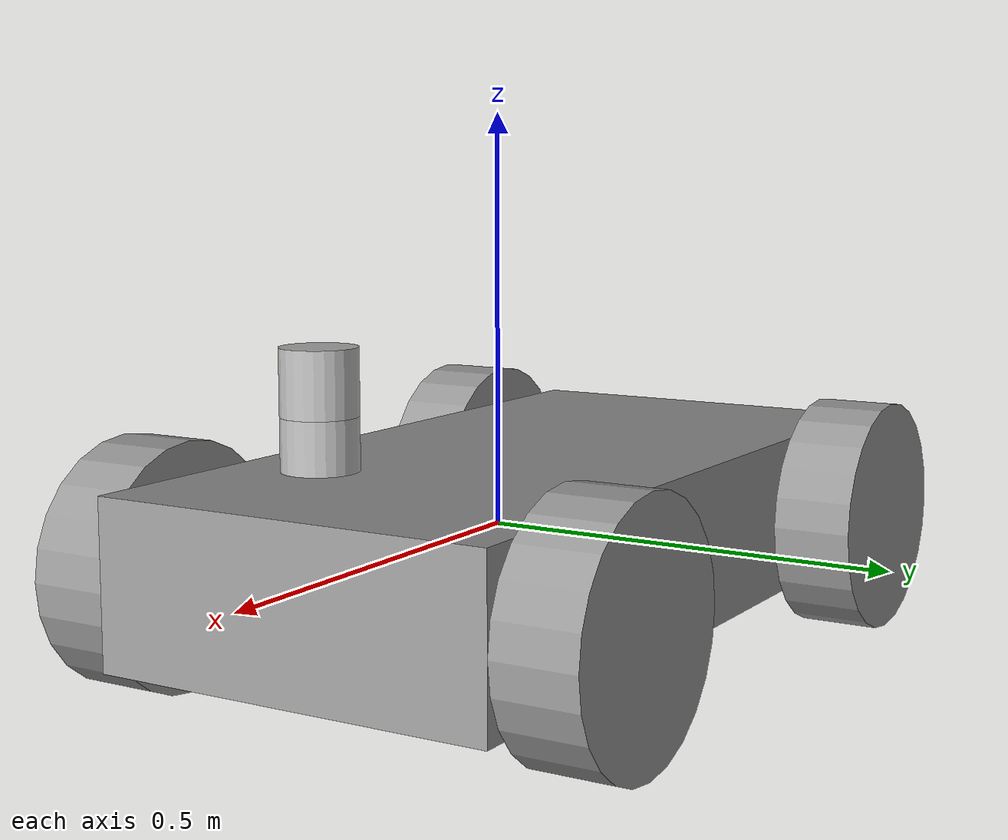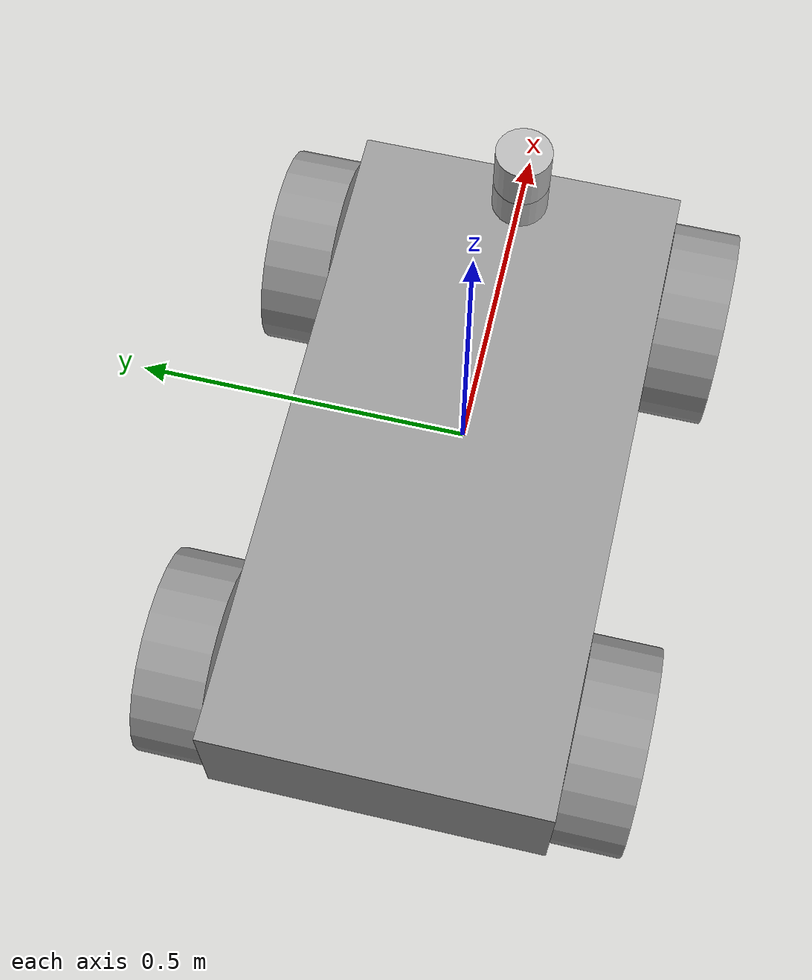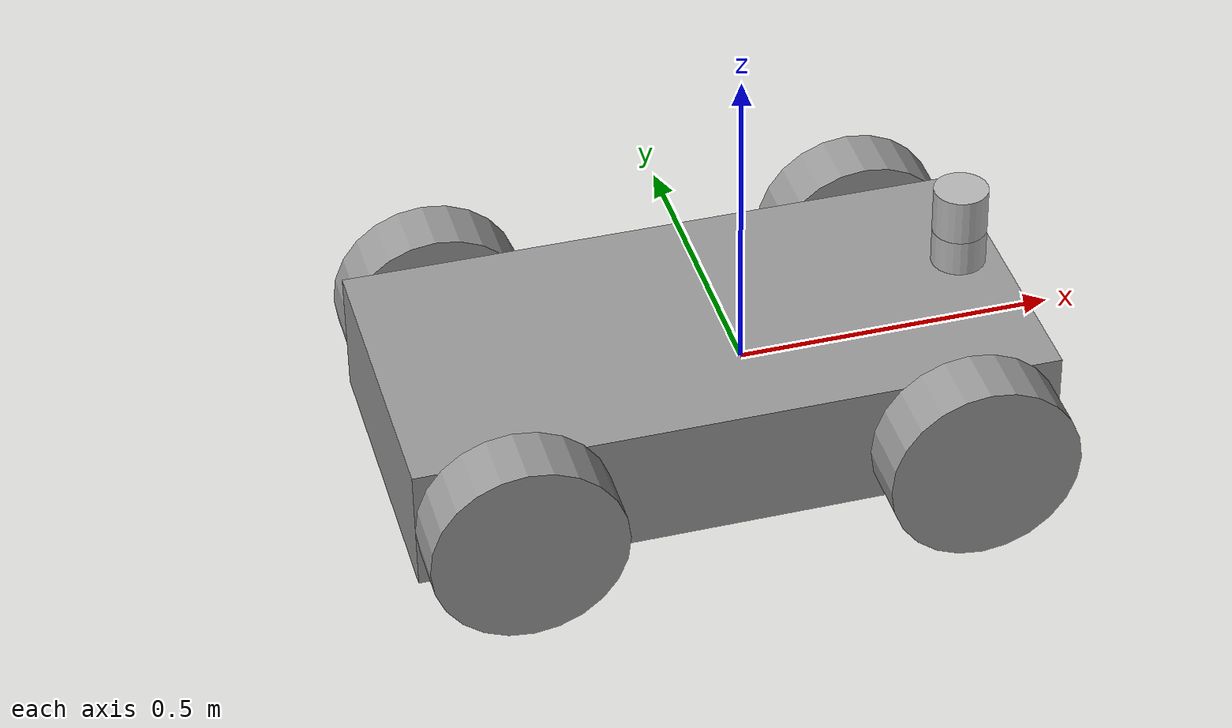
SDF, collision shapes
<?xml version='1.0'?>
<sdf version='1.6'>
  <model name='mobileRobot'>
    <link name='link_0'>
      <pose frame=''>-0.0693 0.001678 -0.017794 -0 -0 -0</pose>
      <inertial>
        <mass>1</mass>
        <inertia>
          <ixx>0.166667</ixx>
          <ixy>0</ixy>
          <ixz>0</ixz>
          <iyy>0.166667</iyy>
          <iyz>0</iyz>
          <izz>0.166667</izz>
        </inertia>
        <pose frame=''>0 0 0 0 -0 0</pose>
      </inertial>
      <self_collide>0</self_collide>
      <kinematic>0</kinematic>
      <visual name='visual'>
        <pose frame=''>0 0 0 0 -0 0</pose>
        <geometry>
          <box>
            <size>1 0.5 0.2</size>
          </box>
        </geometry>
        <material>
          <lighting>1</lighting>
          <script>
            <uri>file://media/materials/scripts/gazebo.material</uri>
            <name>Gazebo/Grey</name>
          </script>
          <shader type='pixel'>
            <normal_map>__default__</normal_map>
          </shader>
          <ambient>0.3 0.3 0.3 1</ambient>
          <diffuse>0.7 0.7 0.7 1</diffuse>
          <specular>0.01 0.01 0.01 1</specular>
          <emissive>0 0 0 1</emissive>
        </material>
        <transparency>0</transparency>
        <cast_shadows>1</cast_shadows>
      </visual>
      <collision name='collision'>
        <laser_retro>0</laser_retro>
        <max_contacts>10</max_contacts>
        <pose frame=''>0 0 0 0 -0 0</pose>
        <geometry>
          <box>
            <size>1 0.5 0.2</size>
          </box>
        </geometry>
        <surface>
          <friction>
            <ode>
              <mu>1</mu>
              <mu2>1</mu2>
              <fdir1>0 0 0</fdir1>
              <slip1>0</slip1>
              <slip2>0</slip2>
            </ode>
            <torsional>
              <coefficient>1</coefficient>
              <patch_radius>0</patch_radius>
              <surface_radius>0</surface_radius>
              <use_patch_radius>1</use_patch_radius>
              <ode>
                <slip>0</slip>
              </ode>
            </torsional>
          </friction>
          <bounce>
            <restitution_coefficient>0</restitution_coefficient>
            <threshold>1e+06</threshold>
          </bounce>
          <contact>
            <collide_without_contact>0</collide_without_contact>
            <collide_without_contact_bitmask>1</collide_without_contact_bitmask>
            <collide_bitmask>1</collide_bitmask>
            <ode>
              <soft_cfm>0</soft_cfm>
              <soft_erp>0.2</soft_erp>
              <kp>1e+13</kp>
              <kd>1</kd>
              <max_vel>0.01</max_vel>
              <min_depth>0</min_depth>
            </ode>
            <bullet>
              <split_impulse>1</split_impulse>
              <split_impulse_penetration_threshold>-0.01</split_impulse_penetration_threshold>
              <soft_cfm>0</soft_cfm>
              <soft_erp>0.2</soft_erp>
              <kp>1e+13</kp>
              <kd>1</kd>
            </bullet>
          </contact>
        </surface>
      </collision>
    </link>
    <link name='link_1'>
      <pose frame=''>-0.4193 -0.298446 -0.017905 1.57 -0 0</pose>
      <inertial>
        <mass>1</mass>
        <inertia>
          <ixx>0.145833</ixx>
          <ixy>0</ixy>
          <ixz>0</ixz>
          <iyy>0.145833</iyy>
          <iyz>0</iyz>
          <izz>0.125</izz>
        </inertia>
        <pose frame=''>0 0 0 0 -0 0</pose>
      </inertial>
      <self_collide>0</self_collide>
      <kinematic>0</kinematic>
      <visual name='visual'>
        <pose frame=''>0 0 0 0 -0 0</pose>
        <geometry>
          <cylinder>
            <radius>0.15</radius>
            <length>0.1</length>
          </cylinder>
        </geometry>
        <material>
          <lighting>1</lighting>
          <script>
            <uri>file://media/materials/scripts/gazebo.material</uri>
            <name>Gazebo/Grey</name>
          </script>
          <shader type='pixel'>
            <normal_map>__default__</normal_map>
          </shader>
          <ambient>0.3 0.3 0.3 1</ambient>
          <diffuse>0.7 0.7 0.7 1</diffuse>
          <specular>0.01 0.01 0.01 1</specular>
          <emissive>0 0 0 1</emissive>
        </material>
        <transparency>0</transparency>
        <cast_shadows>1</cast_shadows>
      </visual>
      <collision name='collision'>
        <laser_retro>0</laser_retro>
        <max_contacts>10</max_contacts>
        <pose frame=''>0 0 0 0 -0 0</pose>
        <geometry>
          <cylinder>
            <radius>0.15</radius>
            <length>0.1</length>
          </cylinder>
        </geometry>
        <surface>
          <friction>
            <ode>
              <mu>1</mu>
              <mu2>1</mu2>
              <fdir1>0 0 0</fdir1>
              <slip1>0</slip1>
              <slip2>0</slip2>
            </ode>
            <torsional>
              <coefficient>1</coefficient>
              <patch_radius>0</patch_radius>
              <surface_radius>0</surface_radius>
              <use_patch_radius>1</use_patch_radius>
              <ode>
                <slip>0</slip>
              </ode>
            </torsional>
          </friction>
          <bounce>
            <restitution_coefficient>0</restitution_coefficient>
            <threshold>1e+06</threshold>
          </bounce>
          <contact>
            <collide_without_contact>0</collide_without_contact>
            <collide_without_contact_bitmask>1</collide_without_contact_bitmask>
            <collide_bitmask>1</collide_bitmask>
            <ode>
              <soft_cfm>0</soft_cfm>
              <soft_erp>0.2</soft_erp>
              <kp>1e+13</kp>
              <kd>1</kd>
              <max_vel>0.01</max_vel>
              <min_depth>0</min_depth>
            </ode>
            <bullet>
              <split_impulse>1</split_impulse>
              <split_impulse_penetration_threshold>-0.01</split_impulse_penetration_threshold>
              <soft_cfm>0</soft_cfm>
              <soft_erp>0.2</soft_erp>
              <kp>1e+13</kp>
              <kd>1</kd>
            </bullet>
          </contact>
        </surface>
      </collision>
    </link>
    <link name='link_1_clone'>
      <pose frame=''>-0.419299 0.301798 -0.027834 1.57 -0 0</pose>
      <inertial>
        <mass>1</mass>
        <inertia>
          <ixx>0.145833</ixx>
          <ixy>0</ixy>
          <ixz>0</ixz>
          <iyy>0.145833</iyy>
          <iyz>0</iyz>
          <izz>0.125</izz>
        </inertia>
        <pose frame=''>0 0 0 0 -0 0</pose>
      </inertial>
      <self_collide>0</self_collide>
      <kinematic>0</kinematic>
      <visual name='visual'>
        <pose frame=''>0 0 0 0 -0 0</pose>
        <geometry>
          <cylinder>
            <radius>0.15</radius>
            <length>0.1</length>
          </cylinder>
        </geometry>
        <material>
          <lighting>1</lighting>
          <script>
            <uri>file://media/materials/scripts/gazebo.material</uri>
            <name>Gazebo/Grey</name>
          </script>
          <shader type='pixel'>
            <normal_map>__default__</normal_map>
          </shader>
          <ambient>0.3 0.3 0.3 1</ambient>
          <diffuse>0.7 0.7 0.7 1</diffuse>
          <specular>0.01 0.01 0.01 1</specular>
          <emissive>0 0 0 1</emissive>
        </material>
        <transparency>0</transparency>
        <cast_shadows>1</cast_shadows>
      </visual>
      <collision name='collision'>
        <laser_retro>0</laser_retro>
        <max_contacts>10</max_contacts>
        <pose frame=''>0 0 0 0 -0 0</pose>
        <geometry>
          <cylinder>
            <radius>0.15</radius>
            <length>0.1</length>
          </cylinder>
        </geometry>
        <surface>
          <friction>
            <ode>
              <mu>1</mu>
              <mu2>1</mu2>
              <fdir1>0 0 0</fdir1>
              <slip1>0</slip1>
              <slip2>0</slip2>
            </ode>
            <torsional>
              <coefficient>1</coefficient>
              <patch_radius>0</patch_radius>
              <surface_radius>0</surface_radius>
              <use_patch_radius>1</use_patch_radius>
              <ode>
                <slip>0</slip>
              </ode>
            </torsional>
          </friction>
          <bounce>
            <restitution_coefficient>0</restitution_coefficient>
            <threshold>1e+06</threshold>
          </bounce>
          <contact>
            <collide_without_contact>0</collide_without_contact>
            <collide_without_contact_bitmask>1</collide_without_contact_bitmask>
            <collide_bitmask>1</collide_bitmask>
            <ode>
              <soft_cfm>0</soft_cfm>
              <soft_erp>0.2</soft_erp>
              <kp>1e+13</kp>
              <kd>1</kd>
              <max_vel>0.01</max_vel>
              <min_depth>0</min_depth>
            </ode>
            <bullet>
              <split_impulse>1</split_impulse>
              <split_impulse_penetration_threshold>-0.01</split_impulse_penetration_threshold>
              <soft_cfm>0</soft_cfm>
              <soft_erp>0.2</soft_erp>
              <kp>1e+13</kp>
              <kd>1</kd>
            </bullet>
          </contact>
        </surface>
      </collision>
    </link>
    <link name='link_1_clone_0'>
      <pose frame=''>0.2807 -0.298441 -0.027834 1.57 -0 0</pose>
      <inertial>
        <mass>1</mass>
        <inertia>
          <ixx>0.145833</ixx>
          <ixy>0</ixy>
          <ixz>0</ixz>
          <iyy>0.145833</iyy>
          <iyz>0</iyz>
          <izz>0.125</izz>
        </inertia>
        <pose frame=''>0 0 0 0 -0 0</pose>
      </inertial>
      <self_collide>0</self_collide>
      <kinematic>0</kinematic>
      <visual name='visual'>
        <pose frame=''>0 0 0 0 -0 0</pose>
        <geometry>
          <cylinder>
            <radius>0.15</radius>
            <length>0.1</length>
          </cylinder>
        </geometry>
        <material>
          <lighting>1</lighting>
          <script>
            <uri>file://media/materials/scripts/gazebo.material</uri>
            <name>Gazebo/Grey</name>
          </script>
          <shader type='pixel'>
            <normal_map>__default__</normal_map>
          </shader>
          <ambient>0.3 0.3 0.3 1</ambient>
          <diffuse>0.7 0.7 0.7 1</diffuse>
          <specular>0.01 0.01 0.01 1</specular>
          <emissive>0 0 0 1</emissive>
        </material>
        <transparency>0</transparency>
        <cast_shadows>1</cast_shadows>
      </visual>
      <collision name='collision'>
        <laser_retro>0</laser_retro>
        <max_contacts>10</max_contacts>
        <pose frame=''>0 0 0 0 -0 0</pose>
        <geometry>
          <cylinder>
            <radius>0.15</radius>
            <length>0.1</length>
          </cylinder>
        </geometry>
        <surface>
          <friction>
            <ode>
              <mu>1</mu>
              <mu2>1</mu2>
              <fdir1>0 0 0</fdir1>
              <slip1>0</slip1>
              <slip2>0</slip2>
            </ode>
            <torsional>
              <coefficient>1</coefficient>
              <patch_radius>0</patch_radius>
              <surface_radius>0</surface_radius>
              <use_patch_radius>1</use_patch_radius>
              <ode>
                <slip>0</slip>
              </ode>
            </torsional>
          </friction>
          <bounce>
            <restitution_coefficient>0</restitution_coefficient>
            <threshold>1e+06</threshold>
          </bounce>
          <contact>
            <collide_without_contact>0</collide_without_contact>
            <collide_without_contact_bitmask>1</collide_without_contact_bitmask>
            <collide_bitmask>1</collide_bitmask>
            <ode>
              <soft_cfm>0</soft_cfm>
              <soft_erp>0.2</soft_erp>
              <kp>1e+13</kp>
              <kd>1</kd>
              <max_vel>0.01</max_vel>
              <min_depth>0</min_depth>
            </ode>
            <bullet>
              <split_impulse>1</split_impulse>
              <split_impulse_penetration_threshold>-0.01</split_impulse_penetration_threshold>
              <soft_cfm>0</soft_cfm>
              <soft_erp>0.2</soft_erp>
              <kp>1e+13</kp>
              <kd>1</kd>
            </bullet>
          </contact>
        </surface>
      </collision>
    </link>
    <link name='link_1_clone_1'>
      <pose frame=''>0.2807 0.301798 -0.027834 1.57 -0 0</pose>
      <inertial>
        <mass>1</mass>
        <inertia>
          <ixx>0.145833</ixx>
          <ixy>0</ixy>
          <ixz>0</ixz>
          <iyy>0.145833</iyy>
          <iyz>0</iyz>
          <izz>0.125</izz>
        </inertia>
        <pose frame=''>0 0 0 0 -0 0</pose>
      </inertial>
      <self_collide>0</self_collide>
      <kinematic>0</kinematic>
      <visual name='visual'>
        <pose frame=''>0 0 0 0 -0 0</pose>
        <geometry>
          <cylinder>
            <radius>0.15</radius>
            <length>0.1</length>
          </cylinder>
        </geometry>
        <material>
          <lighting>1</lighting>
          <script>
            <uri>file://media/materials/scripts/gazebo.material</uri>
            <name>Gazebo/Grey</name>
          </script>
          <shader type='pixel'>
            <normal_map>__default__</normal_map>
          </shader>
          <ambient>0.3 0.3 0.3 1</ambient>
          <diffuse>0.7 0.7 0.7 1</diffuse>
          <specular>0.01 0.01 0.01 1</specular>
          <emissive>0 0 0 1</emissive>
        </material>
        <transparency>0</transparency>
        <cast_shadows>1</cast_shadows>
      </visual>
      <collision name='collision'>
        <laser_retro>0</laser_retro>
        <max_contacts>10</max_contacts>
        <pose frame=''>0 0 0 0 -0 0</pose>
        <geometry>
          <cylinder>
            <radius>0.15</radius>
            <length>0.1</length>
          </cylinder>
        </geometry>
        <surface>
          <friction>
            <ode>
              <mu>1</mu>
              <mu2>1</mu2>
              <fdir1>0 0 0</fdir1>
              <slip1>0</slip1>
              <slip2>0</slip2>
            </ode>
            <torsional>
              <coefficient>1</coefficient>
              <patch_radius>0</patch_radius>
              <surface_radius>0</surface_radius>
              <use_patch_radius>1</use_patch_radius>
              <ode>
                <slip>0</slip>
              </ode>
            </torsional>
          </friction>
          <bounce>
            <restitution_coefficient>0</restitution_coefficient>
            <threshold>1e+06</threshold>
          </bounce>
          <contact>
            <collide_without_contact>0</collide_without_contact>
            <collide_without_contact_bitmask>1</collide_without_contact_bitmask>
            <collide_bitmask>1</collide_bitmask>
            <ode>
              <soft_cfm>0</soft_cfm>
              <soft_erp>0.2</soft_erp>
              <kp>1e+13</kp>
              <kd>1</kd>
              <max_vel>0.01</max_vel>
              <min_depth>0</min_depth>
            </ode>
            <bullet>
              <split_impulse>1</split_impulse>
              <split_impulse_penetration_threshold>-0.01</split_impulse_penetration_threshold>
              <soft_cfm>0</soft_cfm>
              <soft_erp>0.2</soft_erp>
              <kp>1e+13</kp>
              <kd>1</kd>
            </bullet>
          </contact>
        </surface>
      </collision>
    </link>
    <model name='velodyne'>
      <link name='base'>
        <pose frame=''>0 0 0.029335 0 -0 0</pose>
        <inertial>
          <mass>1.2</mass>
          <inertia>
            <ixx>0.00108747</ixx>
            <iyy>0.00108747</iyy>
            <izz>0.00109244</izz>
            <ixy>0</ixy>
            <ixz>0</ixz>
            <iyz>0</iyz>
          </inertia>
        </inertial>
        <collision name='base_collision'>
          <geometry>
            <cylinder>
              <radius>0.04267</radius>
              <length>0.05867</length>
            </cylinder>
          </geometry>
          <max_contacts>10</max_contacts>
          <surface>
            <contact>
              <ode/>
            </contact>
            <bounce/>
            <friction>
              <torsional>
                <ode/>
              </torsional>
              <ode/>
            </friction>
          </surface>
        </collision>
        <visual name='base_visual'>
          <pose frame=''>0 0 -0.029335 0 -0 0</pose>
          <geometry>
            <mesh>
              <uri>model://velodyne_hdl32/meshes/velodyne_base.dae</uri>
            </mesh>
          </geometry>
        </visual>
        <self_collide>0</self_collide>
        <kinematic>0</kinematic>
      </link>
      <link name='top'>
        <pose frame=''>0 0 0.095455 0 -0 0</pose>
        <inertial>
          <mass>0.1</mass>
          <inertia>
            <ixx>9.0623e-05</ixx>
            <iyy>9.0623e-05</iyy>
            <izz>9.1036e-05</izz>
            <ixy>0</ixy>
            <ixz>0</ixz>
            <iyz>0</iyz>
          </inertia>
        </inertial>
        <collision name='top_collision'>
          <geometry>
            <cylinder>
              <radius>0.04267</radius>
              <length>0.07357</length>
            </cylinder>
          </geometry>
          <max_contacts>10</max_contacts>
          <surface>
            <contact>
              <ode/>
            </contact>
            <bounce/>
            <friction>
              <torsional>
                <ode/>
              </torsional>
              <ode/>
            </friction>
          </surface>
        </collision>
        <visual name='top_visual'>
          <pose frame=''>0 0 -0.037679 0 -0 1.5707</pose>
          <geometry>
            <mesh>
              <uri>model://velodyne_hdl32/meshes/velodyne_top.dae</uri>
            </mesh>
          </geometry>
        </visual>
        <sensor name='sensor' type='ray'>
          <pose frame=''>0 0 -0.004645 1.5707 -0 0</pose>
          <visualize>1</visualize>
          <update_rate>30</update_rate>
          <ray>
            <noise>
              <type>gaussian</type>
              <mean>0</mean>
              <stddev>0.1</stddev>
            </noise>
            <scan>
              <horizontal>
                <samples>32</samples>
                <resolution>1</resolution>
                <min_angle>-0.535292</min_angle>
                <max_angle>0.186227</max_angle>
              </horizontal>
              <vertical>
                <samples>1</samples>
                <min_angle>0</min_angle>
                <max_angle>0</max_angle>
              </vertical>
            </scan>
            <range>
              <min>0.1</min>
              <max>70</max>
              <resolution>0.02</resolution>
            </range>
          </ray>
        </sensor>
        <self_collide>0</self_collide>
        <kinematic>0</kinematic>
      </link>
      <joint name='joint' type='revolute'>
        <pose frame=''>0 0 -0.036785 0 -0 0</pose>
        <parent>base</parent>
        <child>top</child>
        <axis>
          <xyz>0 0 1</xyz>
          <limit>
            <lower>-1e+16</lower>
            <upper>1e+16</upper>
          </limit>
          <use_parent_model_frame>0</use_parent_model_frame>
          <dynamics>
            <spring_reference>0</spring_reference>
            <spring_stiffness>0</spring_stiffness>
          </dynamics>
        </axis>
      </joint>
      <pose frame=''>0.346498 -0.008384 0.119201 -0 -0 -0</pose>
    </model>
    <joint name='link_0_JOINT_0' type='fixed'>
      <parent>link_0</parent>
      <child>velodyne::base</child>
      <pose frame=''>0 0 0 0 -0 0</pose>
      <physics>
        <ode>
          <limit>
            <cfm>0</cfm>
            <erp>0.2</erp>
          </limit>
          <suspension>
            <cfm>0</cfm>
            <erp>0.2</erp>
          </suspension>
        </ode>
      </physics>
    </joint>
    <joint name='link_0_JOINT_1' type='revolute'>
      <parent>link_0</parent>
      <child>link_1</child>
      <pose frame=''>0 0 0 0 -0 0</pose>
      <axis>
        <xyz>1 0 0</xyz>
        <use_parent_model_frame>0</use_parent_model_frame>
        <limit>
          <lower>-1.79769e+308</lower>
          <upper>1.79769e+308</upper>
          <effort>-1</effort>
          <velocity>-1</velocity>
        </limit>
        <dynamics>
          <spring_reference>0</spring_reference>
          <spring_stiffness>0</spring_stiffness>
          <damping>0</damping>
          <friction>0</friction>
        </dynamics>
      </axis>
      <physics>
        <ode>
          <limit>
            <cfm>0</cfm>
            <erp>0.2</erp>
          </limit>
          <suspension>
            <cfm>0</cfm>
            <erp>0.2</erp>
          </suspension>
        </ode>
      </physics>
    </joint>
    <joint name='link_0_JOINT_2' type='revolute'>
      <parent>link_0</parent>
      <child>link_1_clone_1</child>
      <pose frame=''>0 0 0 0 -0 0</pose>
      <axis>
        <xyz>1 0 0</xyz>
        <use_parent_model_frame>0</use_parent_model_frame>
        <limit>
          <lower>-1.79769e+308</lower>
          <upper>1.79769e+308</upper>
          <effort>-1</effort>
          <velocity>-1</velocity>
        </limit>
        <dynamics>
          <spring_reference>0</spring_reference>
          <spring_stiffness>0</spring_stiffness>
          <damping>0</damping>
          <friction>0</friction>
        </dynamics>
      </axis>
      <physics>
        <ode>
          <limit>
            <cfm>0</cfm>
            <erp>0.2</erp>
          </limit>
          <suspension>
            <cfm>0</cfm>
            <erp>0.2</erp>
          </suspension>
        </ode>
      </physics>
    </joint>
    <joint name='link_0_JOINT_3' type='revolute'>
      <parent>link_0</parent>
      <child>link_1_clone</child>
      <pose frame=''>0 0 0 0 -0 0</pose>
      <axis>
        <xyz>1 0 0</xyz>
        <use_parent_model_frame>0</use_parent_model_frame>
        <limit>
          <lower>-1.79769e+308</lower>
          <upper>1.79769e+308</upper>
          <effort>-1</effort>
          <velocity>-1</velocity>
        </limit>
        <dynamics>
          <spring_reference>0</spring_reference>
          <spring_stiffness>0</spring_stiffness>
          <damping>0</damping>
          <friction>0</friction>
        </dynamics>
      </axis>
      <physics>
        <ode>
          <limit>
            <cfm>0</cfm>
            <erp>0.2</erp>
          </limit>
          <suspension>
            <cfm>0</cfm>
            <erp>0.2</erp>
          </suspension>
        </ode>
      </physics>
    </joint>
    <joint name='link_0_JOINT_4' type='revolute'>
      <parent>link_0</parent>
      <child>link_1_clone_0</child>
      <pose frame=''>0 0 0 0 -0 0</pose>
      <axis>
        <xyz>1 0 0</xyz>
        <use_parent_model_frame>0</use_parent_model_frame>
        <limit>
          <lower>-1.79769e+308</lower>
          <upper>1.79769e+308</upper>
          <effort>-1</effort>
          <velocity>-1</velocity>
        </limit>
        <dynamics>
          <spring_reference>0</spring_reference>
          <spring_stiffness>0</spring_stiffness>
          <damping>0</damping>
          <friction>0</friction>
        </dynamics>
      </axis>
      <physics>
        <ode>
          <limit>
            <cfm>0</cfm>
            <erp>0.2</erp>
          </limit>
          <suspension>
            <cfm>0</cfm>
            <erp>0.2</erp>
          </suspension>
        </ode>
      </physics>
    </joint>
    <static>0</static>
    <allow_auto_disable>1</allow_auto_disable>
  </model>
</sdf>
